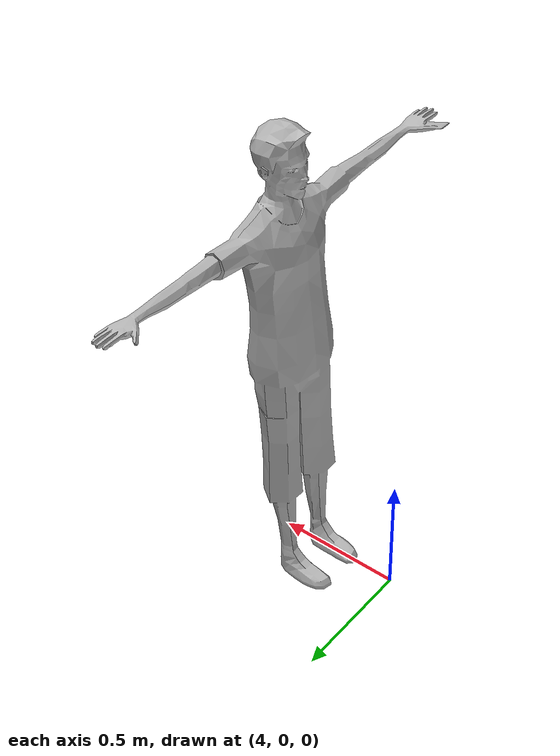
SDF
<sdf version="1.5">
  <model name="MaleVisitorPhone">
    <link name="link">
      <pose>4.167496 0.327632 0.334955 -0.011729 -0.043149 3.135400</pose>
      <visual name="visual">
        <geometry>
          <mesh><uri>model://MaleVisitorPhone/meshes/MaleVisitorPhoneIdle.dae</uri></mesh>
        </geometry>
      </visual>
      <collision name="collision">
        <geometry>
          <mesh><uri>model://MaleVisitorPhone/meshes/MaleVisitorPhoneIdle.dae</uri></mesh>
        </geometry>
      </collision>
    </link>
  </model>
</sdf>
